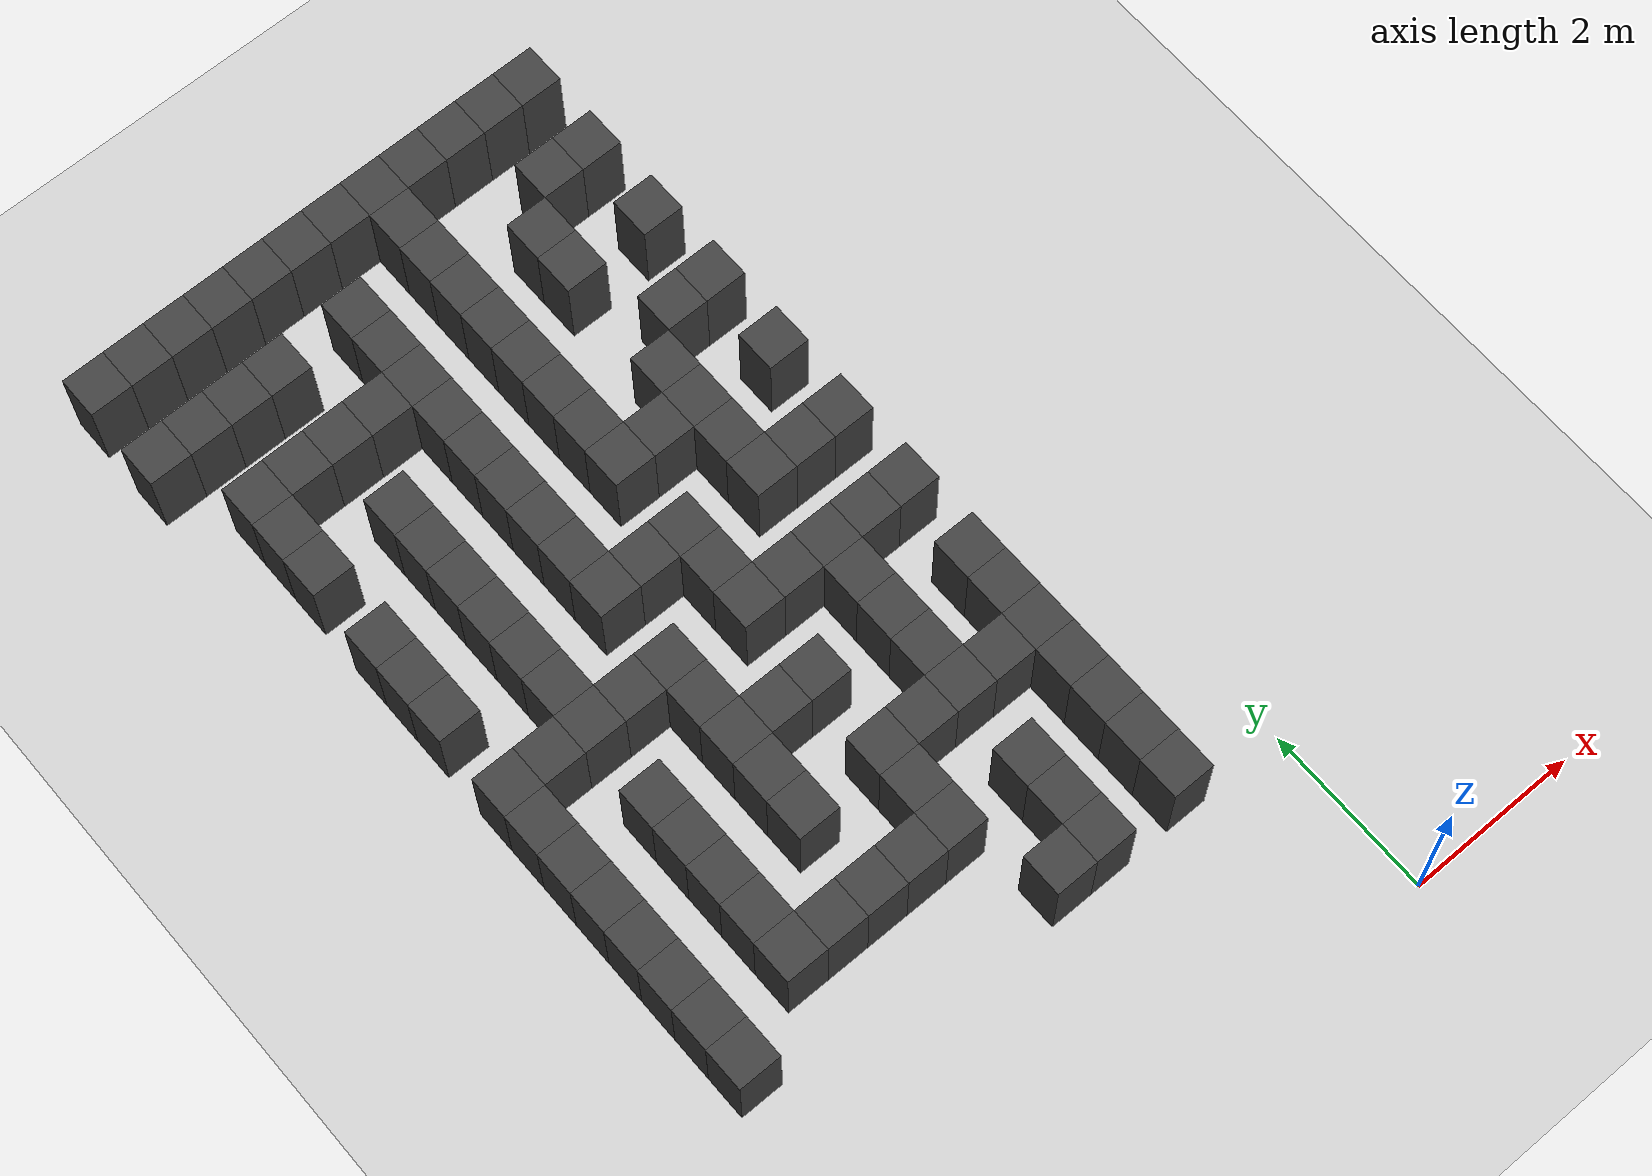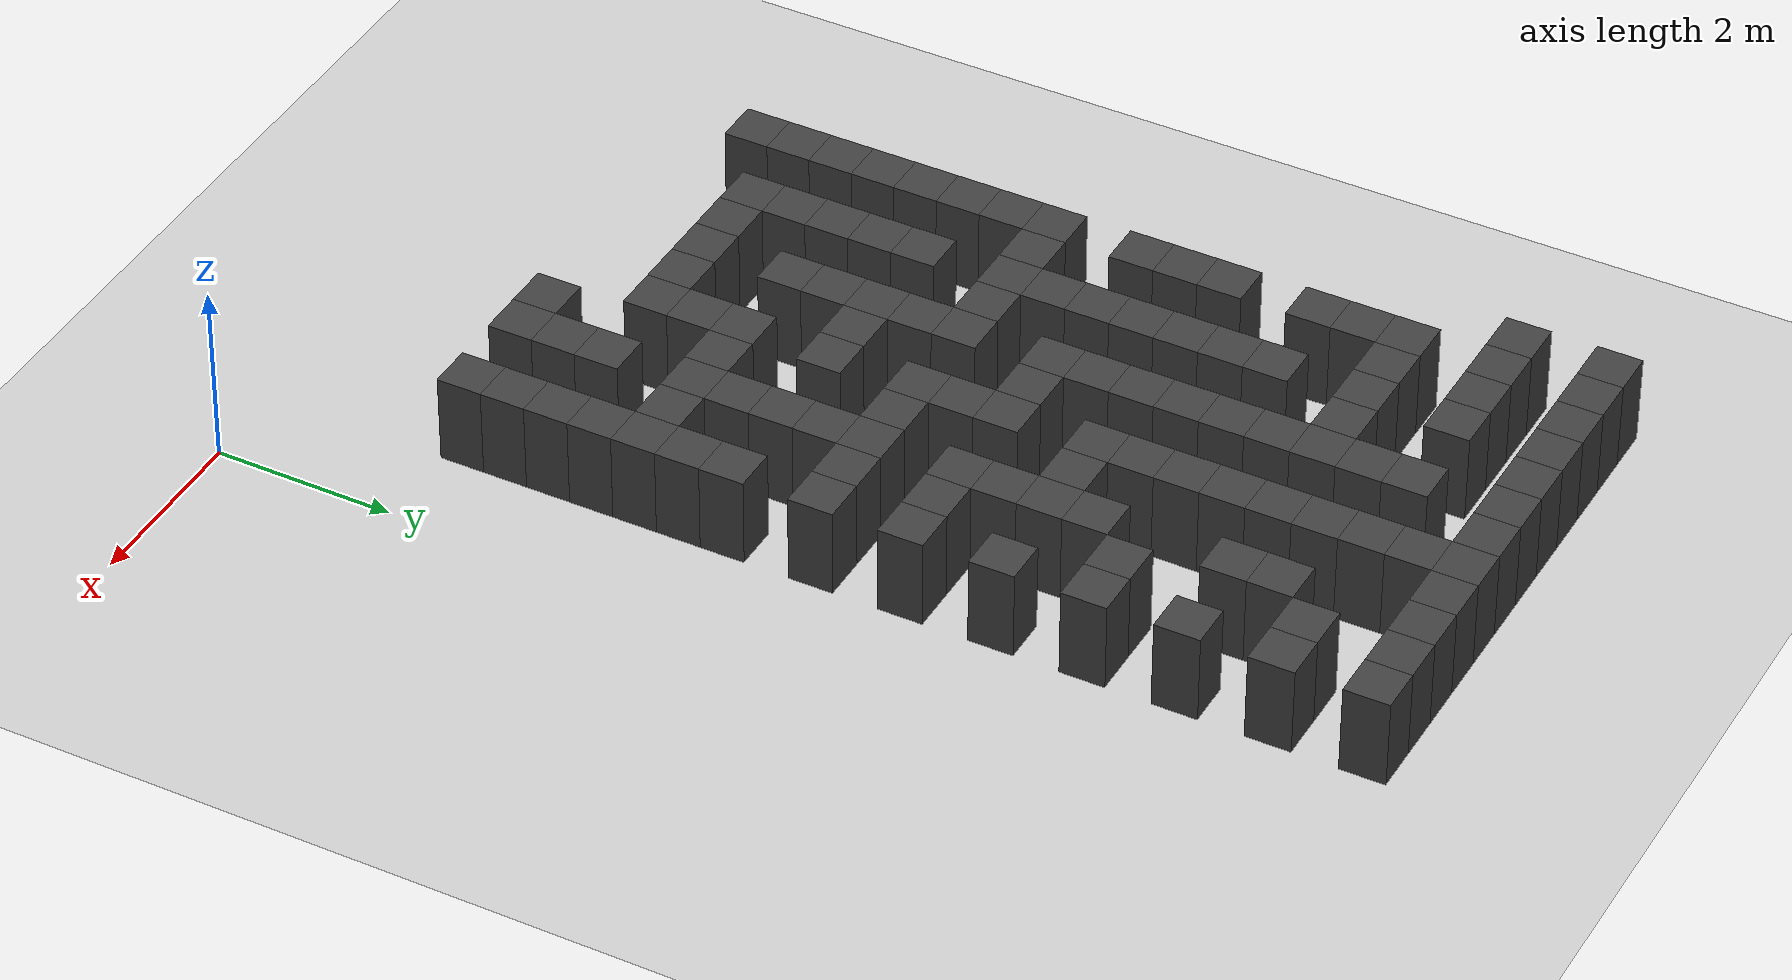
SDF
<sdf version="1.7">
 <world name="map_18332">
  <model name="ground_plane">
   <static>true</static>
   <link name="link">
    <collision name="collision">
     <geometry><plane><normal>0 0 1</normal><size>200 200</size></plane></geometry>
    </collision>
    <visual name="visual">
     <geometry><plane><normal>0 0 1</normal><size>200 200</size></plane></geometry>
     <material><ambient>0.8 0.8 0.8 1</ambient><diffuse>0.8 0.8 0.8 1</diffuse></material>
    </visual>
   </link>
  </model>
  <model name="maze_environment">
   <static>true</static>
   <link name="wall_11">
    <pose>-6.750 12.250 0.500 0 0 0</pose>
    <collision name="col"><geometry><box><size>0.5 0.5 1.0</size></box></geometry></collision>
    <visual name="vis">
     <geometry><box><size>0.5 0.5 1.0</size></box></geometry>
     <material><ambient>0.15 0.15 0.15 1</ambient><diffuse>0.25 0.25 0.25 1</diffuse></material>
    </visual>
   </link>
   <link name="wall_12">
    <pose>-6.250 12.250 0.500 0 0 0</pose>
    <collision name="col"><geometry><box><size>0.5 0.5 1.0</size></box></geometry></collision>
    <visual name="vis">
     <geometry><box><size>0.5 0.5 1.0</size></box></geometry>
     <material><ambient>0.15 0.15 0.15 1</ambient><diffuse>0.25 0.25 0.25 1</diffuse></material>
    </visual>
   </link>
   <link name="wall_13">
    <pose>-5.750 12.250 0.500 0 0 0</pose>
    <collision name="col"><geometry><box><size>0.5 0.5 1.0</size></box></geometry></collision>
    <visual name="vis">
     <geometry><box><size>0.5 0.5 1.0</size></box></geometry>
     <material><ambient>0.15 0.15 0.15 1</ambient><diffuse>0.25 0.25 0.25 1</diffuse></material>
    </visual>
   </link>
   <link name="wall_14">
    <pose>-5.250 12.250 0.500 0 0 0</pose>
    <collision name="col"><geometry><box><size>0.5 0.5 1.0</size></box></geometry></collision>
    <visual name="vis">
     <geometry><box><size>0.5 0.5 1.0</size></box></geometry>
     <material><ambient>0.15 0.15 0.15 1</ambient><diffuse>0.25 0.25 0.25 1</diffuse></material>
    </visual>
   </link>
   <link name="wall_15">
    <pose>-4.750 12.250 0.500 0 0 0</pose>
    <collision name="col"><geometry><box><size>0.5 0.5 1.0</size></box></geometry></collision>
    <visual name="vis">
     <geometry><box><size>0.5 0.5 1.0</size></box></geometry>
     <material><ambient>0.15 0.15 0.15 1</ambient><diffuse>0.25 0.25 0.25 1</diffuse></material>
    </visual>
   </link>
   <link name="wall_16">
    <pose>-4.250 12.250 0.500 0 0 0</pose>
    <collision name="col"><geometry><box><size>0.5 0.5 1.0</size></box></geometry></collision>
    <visual name="vis">
     <geometry><box><size>0.5 0.5 1.0</size></box></geometry>
     <material><ambient>0.15 0.15 0.15 1</ambient><diffuse>0.25 0.25 0.25 1</diffuse></material>
    </visual>
   </link>
   <link name="wall_17">
    <pose>-3.750 12.250 0.500 0 0 0</pose>
    <collision name="col"><geometry><box><size>0.5 0.5 1.0</size></box></geometry></collision>
    <visual name="vis">
     <geometry><box><size>0.5 0.5 1.0</size></box></geometry>
     <material><ambient>0.15 0.15 0.15 1</ambient><diffuse>0.25 0.25 0.25 1</diffuse></material>
    </visual>
   </link>
   <link name="wall_18">
    <pose>-3.250 12.250 0.500 0 0 0</pose>
    <collision name="col"><geometry><box><size>0.5 0.5 1.0</size></box></geometry></collision>
    <visual name="vis">
     <geometry><box><size>0.5 0.5 1.0</size></box></geometry>
     <material><ambient>0.15 0.15 0.15 1</ambient><diffuse>0.25 0.25 0.25 1</diffuse></material>
    </visual>
   </link>
   <link name="wall_19">
    <pose>-2.750 12.250 0.500 0 0 0</pose>
    <collision name="col"><geometry><box><size>0.5 0.5 1.0</size></box></geometry></collision>
    <visual name="vis">
     <geometry><box><size>0.5 0.5 1.0</size></box></geometry>
     <material><ambient>0.15 0.15 0.15 1</ambient><diffuse>0.25 0.25 0.25 1</diffuse></material>
    </visual>
   </link>
   <link name="wall_20">
    <pose>-2.250 12.250 0.500 0 0 0</pose>
    <collision name="col"><geometry><box><size>0.5 0.5 1.0</size></box></geometry></collision>
    <visual name="vis">
     <geometry><box><size>0.5 0.5 1.0</size></box></geometry>
     <material><ambient>0.15 0.15 0.15 1</ambient><diffuse>0.25 0.25 0.25 1</diffuse></material>
    </visual>
   </link>
   <link name="wall_21">
    <pose>-1.750 12.250 0.500 0 0 0</pose>
    <collision name="col"><geometry><box><size>0.5 0.5 1.0</size></box></geometry></collision>
    <visual name="vis">
     <geometry><box><size>0.5 0.5 1.0</size></box></geometry>
     <material><ambient>0.15 0.15 0.15 1</ambient><diffuse>0.25 0.25 0.25 1</diffuse></material>
    </visual>
   </link>
   <link name="wall_22">
    <pose>-1.250 12.250 0.500 0 0 0</pose>
    <collision name="col"><geometry><box><size>0.5 0.5 1.0</size></box></geometry></collision>
    <visual name="vis">
     <geometry><box><size>0.5 0.5 1.0</size></box></geometry>
     <material><ambient>0.15 0.15 0.15 1</ambient><diffuse>0.25 0.25 0.25 1</diffuse></material>
    </visual>
   </link>
   <link name="wall_53">
    <pose>-3.250 11.750 0.500 0 0 0</pose>
    <collision name="col"><geometry><box><size>0.5 0.5 1.0</size></box></geometry></collision>
    <visual name="vis">
     <geometry><box><size>0.5 0.5 1.0</size></box></geometry>
     <material><ambient>0.15 0.15 0.15 1</ambient><diffuse>0.25 0.25 0.25 1</diffuse></material>
    </visual>
   </link>
   <link name="wall_65">
    <pose>-6.750 11.250 0.500 0 0 0</pose>
    <collision name="col"><geometry><box><size>0.5 0.5 1.0</size></box></geometry></collision>
    <visual name="vis">
     <geometry><box><size>0.5 0.5 1.0</size></box></geometry>
     <material><ambient>0.15 0.15 0.15 1</ambient><diffuse>0.25 0.25 0.25 1</diffuse></material>
    </visual>
   </link>
   <link name="wall_66">
    <pose>-6.250 11.250 0.500 0 0 0</pose>
    <collision name="col"><geometry><box><size>0.5 0.5 1.0</size></box></geometry></collision>
    <visual name="vis">
     <geometry><box><size>0.5 0.5 1.0</size></box></geometry>
     <material><ambient>0.15 0.15 0.15 1</ambient><diffuse>0.25 0.25 0.25 1</diffuse></material>
    </visual>
   </link>
   <link name="wall_67">
    <pose>-5.750 11.250 0.500 0 0 0</pose>
    <collision name="col"><geometry><box><size>0.5 0.5 1.0</size></box></geometry></collision>
    <visual name="vis">
     <geometry><box><size>0.5 0.5 1.0</size></box></geometry>
     <material><ambient>0.15 0.15 0.15 1</ambient><diffuse>0.25 0.25 0.25 1</diffuse></material>
    </visual>
   </link>
   <link name="wall_68">
    <pose>-5.250 11.250 0.500 0 0 0</pose>
    <collision name="col"><geometry><box><size>0.5 0.5 1.0</size></box></geometry></collision>
    <visual name="vis">
     <geometry><box><size>0.5 0.5 1.0</size></box></geometry>
     <material><ambient>0.15 0.15 0.15 1</ambient><diffuse>0.25 0.25 0.25 1</diffuse></material>
    </visual>
   </link>
   <link name="wall_69">
    <pose>-4.250 11.250 0.500 0 0 0</pose>
    <collision name="col"><geometry><box><size>0.5 0.5 1.0</size></box></geometry></collision>
    <visual name="vis">
     <geometry><box><size>0.5 0.5 1.0</size></box></geometry>
     <material><ambient>0.15 0.15 0.15 1</ambient><diffuse>0.25 0.25 0.25 1</diffuse></material>
    </visual>
   </link>
   <link name="wall_70">
    <pose>-3.250 11.250 0.500 0 0 0</pose>
    <collision name="col"><geometry><box><size>0.5 0.5 1.0</size></box></geometry></collision>
    <visual name="vis">
     <geometry><box><size>0.5 0.5 1.0</size></box></geometry>
     <material><ambient>0.15 0.15 0.15 1</ambient><diffuse>0.25 0.25 0.25 1</diffuse></material>
    </visual>
   </link>
   <link name="wall_71">
    <pose>-1.750 11.250 0.500 0 0 0</pose>
    <collision name="col"><geometry><box><size>0.5 0.5 1.0</size></box></geometry></collision>
    <visual name="vis">
     <geometry><box><size>0.5 0.5 1.0</size></box></geometry>
     <material><ambient>0.15 0.15 0.15 1</ambient><diffuse>0.25 0.25 0.25 1</diffuse></material>
    </visual>
   </link>
   <link name="wall_72">
    <pose>-1.250 11.250 0.500 0 0 0</pose>
    <collision name="col"><geometry><box><size>0.5 0.5 1.0</size></box></geometry></collision>
    <visual name="vis">
     <geometry><box><size>0.5 0.5 1.0</size></box></geometry>
     <material><ambient>0.15 0.15 0.15 1</ambient><diffuse>0.25 0.25 0.25 1</diffuse></material>
    </visual>
   </link>
   <link name="wall_96">
    <pose>-4.250 10.750 0.500 0 0 0</pose>
    <collision name="col"><geometry><box><size>0.5 0.5 1.0</size></box></geometry></collision>
    <visual name="vis">
     <geometry><box><size>0.5 0.5 1.0</size></box></geometry>
     <material><ambient>0.15 0.15 0.15 1</ambient><diffuse>0.25 0.25 0.25 1</diffuse></material>
    </visual>
   </link>
   <link name="wall_97">
    <pose>-3.250 10.750 0.500 0 0 0</pose>
    <collision name="col"><geometry><box><size>0.5 0.5 1.0</size></box></geometry></collision>
    <visual name="vis">
     <geometry><box><size>0.5 0.5 1.0</size></box></geometry>
     <material><ambient>0.15 0.15 0.15 1</ambient><diffuse>0.25 0.25 0.25 1</diffuse></material>
    </visual>
   </link>
   <link name="wall_98">
    <pose>-2.250 10.750 0.500 0 0 0</pose>
    <collision name="col"><geometry><box><size>0.5 0.5 1.0</size></box></geometry></collision>
    <visual name="vis">
     <geometry><box><size>0.5 0.5 1.0</size></box></geometry>
     <material><ambient>0.15 0.15 0.15 1</ambient><diffuse>0.25 0.25 0.25 1</diffuse></material>
    </visual>
   </link>
   <link name="wall_116">
    <pose>-6.250 10.250 0.500 0 0 0</pose>
    <collision name="col"><geometry><box><size>0.5 0.5 1.0</size></box></geometry></collision>
    <visual name="vis">
     <geometry><box><size>0.5 0.5 1.0</size></box></geometry>
     <material><ambient>0.15 0.15 0.15 1</ambient><diffuse>0.25 0.25 0.25 1</diffuse></material>
    </visual>
   </link>
   <link name="wall_117">
    <pose>-5.750 10.250 0.500 0 0 0</pose>
    <collision name="col"><geometry><box><size>0.5 0.5 1.0</size></box></geometry></collision>
    <visual name="vis">
     <geometry><box><size>0.5 0.5 1.0</size></box></geometry>
     <material><ambient>0.15 0.15 0.15 1</ambient><diffuse>0.25 0.25 0.25 1</diffuse></material>
    </visual>
   </link>
   <link name="wall_118">
    <pose>-5.250 10.250 0.500 0 0 0</pose>
    <collision name="col"><geometry><box><size>0.5 0.5 1.0</size></box></geometry></collision>
    <visual name="vis">
     <geometry><box><size>0.5 0.5 1.0</size></box></geometry>
     <material><ambient>0.15 0.15 0.15 1</ambient><diffuse>0.25 0.25 0.25 1</diffuse></material>
    </visual>
   </link>
   <link name="wall_119">
    <pose>-4.750 10.250 0.500 0 0 0</pose>
    <collision name="col"><geometry><box><size>0.5 0.5 1.0</size></box></geometry></collision>
    <visual name="vis">
     <geometry><box><size>0.5 0.5 1.0</size></box></geometry>
     <material><ambient>0.15 0.15 0.15 1</ambient><diffuse>0.25 0.25 0.25 1</diffuse></material>
    </visual>
   </link>
   <link name="wall_120">
    <pose>-4.250 10.250 0.500 0 0 0</pose>
    <collision name="col"><geometry><box><size>0.5 0.5 1.0</size></box></geometry></collision>
    <visual name="vis">
     <geometry><box><size>0.5 0.5 1.0</size></box></geometry>
     <material><ambient>0.15 0.15 0.15 1</ambient><diffuse>0.25 0.25 0.25 1</diffuse></material>
    </visual>
   </link>
   <link name="wall_121">
    <pose>-3.250 10.250 0.500 0 0 0</pose>
    <collision name="col"><geometry><box><size>0.5 0.5 1.0</size></box></geometry></collision>
    <visual name="vis">
     <geometry><box><size>0.5 0.5 1.0</size></box></geometry>
     <material><ambient>0.15 0.15 0.15 1</ambient><diffuse>0.25 0.25 0.25 1</diffuse></material>
    </visual>
   </link>
   <link name="wall_122">
    <pose>-2.250 10.250 0.500 0 0 0</pose>
    <collision name="col"><geometry><box><size>0.5 0.5 1.0</size></box></geometry></collision>
    <visual name="vis">
     <geometry><box><size>0.5 0.5 1.0</size></box></geometry>
     <material><ambient>0.15 0.15 0.15 1</ambient><diffuse>0.25 0.25 0.25 1</diffuse></material>
    </visual>
   </link>
   <link name="wall_123">
    <pose>-1.250 10.250 0.500 0 0 0</pose>
    <collision name="col"><geometry><box><size>0.5 0.5 1.0</size></box></geometry></collision>
    <visual name="vis">
     <geometry><box><size>0.5 0.5 1.0</size></box></geometry>
     <material><ambient>0.15 0.15 0.15 1</ambient><diffuse>0.25 0.25 0.25 1</diffuse></material>
    </visual>
   </link>
   <link name="wall_148">
    <pose>-6.250 9.750 0.500 0 0 0</pose>
    <collision name="col"><geometry><box><size>0.5 0.5 1.0</size></box></geometry></collision>
    <visual name="vis">
     <geometry><box><size>0.5 0.5 1.0</size></box></geometry>
     <material><ambient>0.15 0.15 0.15 1</ambient><diffuse>0.25 0.25 0.25 1</diffuse></material>
    </visual>
   </link>
   <link name="wall_149">
    <pose>-4.250 9.750 0.500 0 0 0</pose>
    <collision name="col"><geometry><box><size>0.5 0.5 1.0</size></box></geometry></collision>
    <visual name="vis">
     <geometry><box><size>0.5 0.5 1.0</size></box></geometry>
     <material><ambient>0.15 0.15 0.15 1</ambient><diffuse>0.25 0.25 0.25 1</diffuse></material>
    </visual>
   </link>
   <link name="wall_150">
    <pose>-3.250 9.750 0.500 0 0 0</pose>
    <collision name="col"><geometry><box><size>0.5 0.5 1.0</size></box></geometry></collision>
    <visual name="vis">
     <geometry><box><size>0.5 0.5 1.0</size></box></geometry>
     <material><ambient>0.15 0.15 0.15 1</ambient><diffuse>0.25 0.25 0.25 1</diffuse></material>
    </visual>
   </link>
   <link name="wall_166">
    <pose>-6.250 9.250 0.500 0 0 0</pose>
    <collision name="col"><geometry><box><size>0.5 0.5 1.0</size></box></geometry></collision>
    <visual name="vis">
     <geometry><box><size>0.5 0.5 1.0</size></box></geometry>
     <material><ambient>0.15 0.15 0.15 1</ambient><diffuse>0.25 0.25 0.25 1</diffuse></material>
    </visual>
   </link>
   <link name="wall_167">
    <pose>-5.250 9.250 0.500 0 0 0</pose>
    <collision name="col"><geometry><box><size>0.5 0.5 1.0</size></box></geometry></collision>
    <visual name="vis">
     <geometry><box><size>0.5 0.5 1.0</size></box></geometry>
     <material><ambient>0.15 0.15 0.15 1</ambient><diffuse>0.25 0.25 0.25 1</diffuse></material>
    </visual>
   </link>
   <link name="wall_168">
    <pose>-4.250 9.250 0.500 0 0 0</pose>
    <collision name="col"><geometry><box><size>0.5 0.5 1.0</size></box></geometry></collision>
    <visual name="vis">
     <geometry><box><size>0.5 0.5 1.0</size></box></geometry>
     <material><ambient>0.15 0.15 0.15 1</ambient><diffuse>0.25 0.25 0.25 1</diffuse></material>
    </visual>
   </link>
   <link name="wall_169">
    <pose>-3.250 9.250 0.500 0 0 0</pose>
    <collision name="col"><geometry><box><size>0.5 0.5 1.0</size></box></geometry></collision>
    <visual name="vis">
     <geometry><box><size>0.5 0.5 1.0</size></box></geometry>
     <material><ambient>0.15 0.15 0.15 1</ambient><diffuse>0.25 0.25 0.25 1</diffuse></material>
    </visual>
   </link>
   <link name="wall_170">
    <pose>-1.750 9.250 0.500 0 0 0</pose>
    <collision name="col"><geometry><box><size>0.5 0.5 1.0</size></box></geometry></collision>
    <visual name="vis">
     <geometry><box><size>0.5 0.5 1.0</size></box></geometry>
     <material><ambient>0.15 0.15 0.15 1</ambient><diffuse>0.25 0.25 0.25 1</diffuse></material>
    </visual>
   </link>
   <link name="wall_171">
    <pose>-1.250 9.250 0.500 0 0 0</pose>
    <collision name="col"><geometry><box><size>0.5 0.5 1.0</size></box></geometry></collision>
    <visual name="vis">
     <geometry><box><size>0.5 0.5 1.0</size></box></geometry>
     <material><ambient>0.15 0.15 0.15 1</ambient><diffuse>0.25 0.25 0.25 1</diffuse></material>
    </visual>
   </link>
   <link name="wall_198">
    <pose>-5.250 8.750 0.500 0 0 0</pose>
    <collision name="col"><geometry><box><size>0.5 0.5 1.0</size></box></geometry></collision>
    <visual name="vis">
     <geometry><box><size>0.5 0.5 1.0</size></box></geometry>
     <material><ambient>0.15 0.15 0.15 1</ambient><diffuse>0.25 0.25 0.25 1</diffuse></material>
    </visual>
   </link>
   <link name="wall_199">
    <pose>-4.250 8.750 0.500 0 0 0</pose>
    <collision name="col"><geometry><box><size>0.5 0.5 1.0</size></box></geometry></collision>
    <visual name="vis">
     <geometry><box><size>0.5 0.5 1.0</size></box></geometry>
     <material><ambient>0.15 0.15 0.15 1</ambient><diffuse>0.25 0.25 0.25 1</diffuse></material>
    </visual>
   </link>
   <link name="wall_200">
    <pose>-3.250 8.750 0.500 0 0 0</pose>
    <collision name="col"><geometry><box><size>0.5 0.5 1.0</size></box></geometry></collision>
    <visual name="vis">
     <geometry><box><size>0.5 0.5 1.0</size></box></geometry>
     <material><ambient>0.15 0.15 0.15 1</ambient><diffuse>0.25 0.25 0.25 1</diffuse></material>
    </visual>
   </link>
   <link name="wall_201">
    <pose>-2.250 8.750 0.500 0 0 0</pose>
    <collision name="col"><geometry><box><size>0.5 0.5 1.0</size></box></geometry></collision>
    <visual name="vis">
     <geometry><box><size>0.5 0.5 1.0</size></box></geometry>
     <material><ambient>0.15 0.15 0.15 1</ambient><diffuse>0.25 0.25 0.25 1</diffuse></material>
    </visual>
   </link>
   <link name="wall_217">
    <pose>-6.250 8.250 0.500 0 0 0</pose>
    <collision name="col"><geometry><box><size>0.5 0.5 1.0</size></box></geometry></collision>
    <visual name="vis">
     <geometry><box><size>0.5 0.5 1.0</size></box></geometry>
     <material><ambient>0.15 0.15 0.15 1</ambient><diffuse>0.25 0.25 0.25 1</diffuse></material>
    </visual>
   </link>
   <link name="wall_218">
    <pose>-5.250 8.250 0.500 0 0 0</pose>
    <collision name="col"><geometry><box><size>0.5 0.5 1.0</size></box></geometry></collision>
    <visual name="vis">
     <geometry><box><size>0.5 0.5 1.0</size></box></geometry>
     <material><ambient>0.15 0.15 0.15 1</ambient><diffuse>0.25 0.25 0.25 1</diffuse></material>
    </visual>
   </link>
   <link name="wall_219">
    <pose>-4.250 8.250 0.500 0 0 0</pose>
    <collision name="col"><geometry><box><size>0.5 0.5 1.0</size></box></geometry></collision>
    <visual name="vis">
     <geometry><box><size>0.5 0.5 1.0</size></box></geometry>
     <material><ambient>0.15 0.15 0.15 1</ambient><diffuse>0.25 0.25 0.25 1</diffuse></material>
    </visual>
   </link>
   <link name="wall_220">
    <pose>-3.250 8.250 0.500 0 0 0</pose>
    <collision name="col"><geometry><box><size>0.5 0.5 1.0</size></box></geometry></collision>
    <visual name="vis">
     <geometry><box><size>0.5 0.5 1.0</size></box></geometry>
     <material><ambient>0.15 0.15 0.15 1</ambient><diffuse>0.25 0.25 0.25 1</diffuse></material>
    </visual>
   </link>
   <link name="wall_221">
    <pose>-2.750 8.250 0.500 0 0 0</pose>
    <collision name="col"><geometry><box><size>0.5 0.5 1.0</size></box></geometry></collision>
    <visual name="vis">
     <geometry><box><size>0.5 0.5 1.0</size></box></geometry>
     <material><ambient>0.15 0.15 0.15 1</ambient><diffuse>0.25 0.25 0.25 1</diffuse></material>
    </visual>
   </link>
   <link name="wall_222">
    <pose>-2.250 8.250 0.500 0 0 0</pose>
    <collision name="col"><geometry><box><size>0.5 0.5 1.0</size></box></geometry></collision>
    <visual name="vis">
     <geometry><box><size>0.5 0.5 1.0</size></box></geometry>
     <material><ambient>0.15 0.15 0.15 1</ambient><diffuse>0.25 0.25 0.25 1</diffuse></material>
    </visual>
   </link>
   <link name="wall_223">
    <pose>-1.250 8.250 0.500 0 0 0</pose>
    <collision name="col"><geometry><box><size>0.5 0.5 1.0</size></box></geometry></collision>
    <visual name="vis">
     <geometry><box><size>0.5 0.5 1.0</size></box></geometry>
     <material><ambient>0.15 0.15 0.15 1</ambient><diffuse>0.25 0.25 0.25 1</diffuse></material>
    </visual>
   </link>
   <link name="wall_248">
    <pose>-6.250 7.750 0.500 0 0 0</pose>
    <collision name="col"><geometry><box><size>0.5 0.5 1.0</size></box></geometry></collision>
    <visual name="vis">
     <geometry><box><size>0.5 0.5 1.0</size></box></geometry>
     <material><ambient>0.15 0.15 0.15 1</ambient><diffuse>0.25 0.25 0.25 1</diffuse></material>
    </visual>
   </link>
   <link name="wall_249">
    <pose>-5.250 7.750 0.500 0 0 0</pose>
    <collision name="col"><geometry><box><size>0.5 0.5 1.0</size></box></geometry></collision>
    <visual name="vis">
     <geometry><box><size>0.5 0.5 1.0</size></box></geometry>
     <material><ambient>0.15 0.15 0.15 1</ambient><diffuse>0.25 0.25 0.25 1</diffuse></material>
    </visual>
   </link>
   <link name="wall_250">
    <pose>-4.250 7.750 0.500 0 0 0</pose>
    <collision name="col"><geometry><box><size>0.5 0.5 1.0</size></box></geometry></collision>
    <visual name="vis">
     <geometry><box><size>0.5 0.5 1.0</size></box></geometry>
     <material><ambient>0.15 0.15 0.15 1</ambient><diffuse>0.25 0.25 0.25 1</diffuse></material>
    </visual>
   </link>
   <link name="wall_251">
    <pose>-2.250 7.750 0.500 0 0 0</pose>
    <collision name="col"><geometry><box><size>0.5 0.5 1.0</size></box></geometry></collision>
    <visual name="vis">
     <geometry><box><size>0.5 0.5 1.0</size></box></geometry>
     <material><ambient>0.15 0.15 0.15 1</ambient><diffuse>0.25 0.25 0.25 1</diffuse></material>
    </visual>
   </link>
   <link name="wall_265">
    <pose>-6.250 7.250 0.500 0 0 0</pose>
    <collision name="col"><geometry><box><size>0.5 0.5 1.0</size></box></geometry></collision>
    <visual name="vis">
     <geometry><box><size>0.5 0.5 1.0</size></box></geometry>
     <material><ambient>0.15 0.15 0.15 1</ambient><diffuse>0.25 0.25 0.25 1</diffuse></material>
    </visual>
   </link>
   <link name="wall_266">
    <pose>-5.250 7.250 0.500 0 0 0</pose>
    <collision name="col"><geometry><box><size>0.5 0.5 1.0</size></box></geometry></collision>
    <visual name="vis">
     <geometry><box><size>0.5 0.5 1.0</size></box></geometry>
     <material><ambient>0.15 0.15 0.15 1</ambient><diffuse>0.25 0.25 0.25 1</diffuse></material>
    </visual>
   </link>
   <link name="wall_267">
    <pose>-4.250 7.250 0.500 0 0 0</pose>
    <collision name="col"><geometry><box><size>0.5 0.5 1.0</size></box></geometry></collision>
    <visual name="vis">
     <geometry><box><size>0.5 0.5 1.0</size></box></geometry>
     <material><ambient>0.15 0.15 0.15 1</ambient><diffuse>0.25 0.25 0.25 1</diffuse></material>
    </visual>
   </link>
   <link name="wall_268">
    <pose>-3.750 7.250 0.500 0 0 0</pose>
    <collision name="col"><geometry><box><size>0.5 0.5 1.0</size></box></geometry></collision>
    <visual name="vis">
     <geometry><box><size>0.5 0.5 1.0</size></box></geometry>
     <material><ambient>0.15 0.15 0.15 1</ambient><diffuse>0.25 0.25 0.25 1</diffuse></material>
    </visual>
   </link>
   <link name="wall_269">
    <pose>-3.250 7.250 0.500 0 0 0</pose>
    <collision name="col"><geometry><box><size>0.5 0.5 1.0</size></box></geometry></collision>
    <visual name="vis">
     <geometry><box><size>0.5 0.5 1.0</size></box></geometry>
     <material><ambient>0.15 0.15 0.15 1</ambient><diffuse>0.25 0.25 0.25 1</diffuse></material>
    </visual>
   </link>
   <link name="wall_270">
    <pose>-2.250 7.250 0.500 0 0 0</pose>
    <collision name="col"><geometry><box><size>0.5 0.5 1.0</size></box></geometry></collision>
    <visual name="vis">
     <geometry><box><size>0.5 0.5 1.0</size></box></geometry>
     <material><ambient>0.15 0.15 0.15 1</ambient><diffuse>0.25 0.25 0.25 1</diffuse></material>
    </visual>
   </link>
   <link name="wall_271">
    <pose>-1.750 7.250 0.500 0 0 0</pose>
    <collision name="col"><geometry><box><size>0.5 0.5 1.0</size></box></geometry></collision>
    <visual name="vis">
     <geometry><box><size>0.5 0.5 1.0</size></box></geometry>
     <material><ambient>0.15 0.15 0.15 1</ambient><diffuse>0.25 0.25 0.25 1</diffuse></material>
    </visual>
   </link>
   <link name="wall_272">
    <pose>-1.250 7.250 0.500 0 0 0</pose>
    <collision name="col"><geometry><box><size>0.5 0.5 1.0</size></box></geometry></collision>
    <visual name="vis">
     <geometry><box><size>0.5 0.5 1.0</size></box></geometry>
     <material><ambient>0.15 0.15 0.15 1</ambient><diffuse>0.25 0.25 0.25 1</diffuse></material>
    </visual>
   </link>
   <link name="wall_297">
    <pose>-5.250 6.750 0.500 0 0 0</pose>
    <collision name="col"><geometry><box><size>0.5 0.5 1.0</size></box></geometry></collision>
    <visual name="vis">
     <geometry><box><size>0.5 0.5 1.0</size></box></geometry>
     <material><ambient>0.15 0.15 0.15 1</ambient><diffuse>0.25 0.25 0.25 1</diffuse></material>
    </visual>
   </link>
   <link name="wall_298">
    <pose>-3.250 6.750 0.500 0 0 0</pose>
    <collision name="col"><geometry><box><size>0.5 0.5 1.0</size></box></geometry></collision>
    <visual name="vis">
     <geometry><box><size>0.5 0.5 1.0</size></box></geometry>
     <material><ambient>0.15 0.15 0.15 1</ambient><diffuse>0.25 0.25 0.25 1</diffuse></material>
    </visual>
   </link>
   <link name="wall_316">
    <pose>-6.250 6.250 0.500 0 0 0</pose>
    <collision name="col"><geometry><box><size>0.5 0.5 1.0</size></box></geometry></collision>
    <visual name="vis">
     <geometry><box><size>0.5 0.5 1.0</size></box></geometry>
     <material><ambient>0.15 0.15 0.15 1</ambient><diffuse>0.25 0.25 0.25 1</diffuse></material>
    </visual>
   </link>
   <link name="wall_317">
    <pose>-5.750 6.250 0.500 0 0 0</pose>
    <collision name="col"><geometry><box><size>0.5 0.5 1.0</size></box></geometry></collision>
    <visual name="vis">
     <geometry><box><size>0.5 0.5 1.0</size></box></geometry>
     <material><ambient>0.15 0.15 0.15 1</ambient><diffuse>0.25 0.25 0.25 1</diffuse></material>
    </visual>
   </link>
   <link name="wall_318">
    <pose>-5.250 6.250 0.500 0 0 0</pose>
    <collision name="col"><geometry><box><size>0.5 0.5 1.0</size></box></geometry></collision>
    <visual name="vis">
     <geometry><box><size>0.5 0.5 1.0</size></box></geometry>
     <material><ambient>0.15 0.15 0.15 1</ambient><diffuse>0.25 0.25 0.25 1</diffuse></material>
    </visual>
   </link>
   <link name="wall_319">
    <pose>-4.750 6.250 0.500 0 0 0</pose>
    <collision name="col"><geometry><box><size>0.5 0.5 1.0</size></box></geometry></collision>
    <visual name="vis">
     <geometry><box><size>0.5 0.5 1.0</size></box></geometry>
     <material><ambient>0.15 0.15 0.15 1</ambient><diffuse>0.25 0.25 0.25 1</diffuse></material>
    </visual>
   </link>
   <link name="wall_320">
    <pose>-4.250 6.250 0.500 0 0 0</pose>
    <collision name="col"><geometry><box><size>0.5 0.5 1.0</size></box></geometry></collision>
    <visual name="vis">
     <geometry><box><size>0.5 0.5 1.0</size></box></geometry>
     <material><ambient>0.15 0.15 0.15 1</ambient><diffuse>0.25 0.25 0.25 1</diffuse></material>
    </visual>
   </link>
   <link name="wall_321">
    <pose>-3.250 6.250 0.500 0 0 0</pose>
    <collision name="col"><geometry><box><size>0.5 0.5 1.0</size></box></geometry></collision>
    <visual name="vis">
     <geometry><box><size>0.5 0.5 1.0</size></box></geometry>
     <material><ambient>0.15 0.15 0.15 1</ambient><diffuse>0.25 0.25 0.25 1</diffuse></material>
    </visual>
   </link>
   <link name="wall_322">
    <pose>-2.750 6.250 0.500 0 0 0</pose>
    <collision name="col"><geometry><box><size>0.5 0.5 1.0</size></box></geometry></collision>
    <visual name="vis">
     <geometry><box><size>0.5 0.5 1.0</size></box></geometry>
     <material><ambient>0.15 0.15 0.15 1</ambient><diffuse>0.25 0.25 0.25 1</diffuse></material>
    </visual>
   </link>
   <link name="wall_323">
    <pose>-2.250 6.250 0.500 0 0 0</pose>
    <collision name="col"><geometry><box><size>0.5 0.5 1.0</size></box></geometry></collision>
    <visual name="vis">
     <geometry><box><size>0.5 0.5 1.0</size></box></geometry>
     <material><ambient>0.15 0.15 0.15 1</ambient><diffuse>0.25 0.25 0.25 1</diffuse></material>
    </visual>
   </link>
   <link name="wall_324">
    <pose>-1.750 6.250 0.500 0 0 0</pose>
    <collision name="col"><geometry><box><size>0.5 0.5 1.0</size></box></geometry></collision>
    <visual name="vis">
     <geometry><box><size>0.5 0.5 1.0</size></box></geometry>
     <material><ambient>0.15 0.15 0.15 1</ambient><diffuse>0.25 0.25 0.25 1</diffuse></material>
    </visual>
   </link>
   <link name="wall_325">
    <pose>-1.250 6.250 0.500 0 0 0</pose>
    <collision name="col"><geometry><box><size>0.5 0.5 1.0</size></box></geometry></collision>
    <visual name="vis">
     <geometry><box><size>0.5 0.5 1.0</size></box></geometry>
     <material><ambient>0.15 0.15 0.15 1</ambient><diffuse>0.25 0.25 0.25 1</diffuse></material>
    </visual>
   </link>
   <link name="wall_351">
    <pose>-6.250 5.750 0.500 0 0 0</pose>
    <collision name="col"><geometry><box><size>0.5 0.5 1.0</size></box></geometry></collision>
    <visual name="vis">
     <geometry><box><size>0.5 0.5 1.0</size></box></geometry>
     <material><ambient>0.15 0.15 0.15 1</ambient><diffuse>0.25 0.25 0.25 1</diffuse></material>
    </visual>
   </link>
   <link name="wall_352">
    <pose>-4.250 5.750 0.500 0 0 0</pose>
    <collision name="col"><geometry><box><size>0.5 0.5 1.0</size></box></geometry></collision>
    <visual name="vis">
     <geometry><box><size>0.5 0.5 1.0</size></box></geometry>
     <material><ambient>0.15 0.15 0.15 1</ambient><diffuse>0.25 0.25 0.25 1</diffuse></material>
    </visual>
   </link>
   <link name="wall_353">
    <pose>-2.250 5.750 0.500 0 0 0</pose>
    <collision name="col"><geometry><box><size>0.5 0.5 1.0</size></box></geometry></collision>
    <visual name="vis">
     <geometry><box><size>0.5 0.5 1.0</size></box></geometry>
     <material><ambient>0.15 0.15 0.15 1</ambient><diffuse>0.25 0.25 0.25 1</diffuse></material>
    </visual>
   </link>
   <link name="wall_367">
    <pose>-6.250 5.250 0.500 0 0 0</pose>
    <collision name="col"><geometry><box><size>0.5 0.5 1.0</size></box></geometry></collision>
    <visual name="vis">
     <geometry><box><size>0.5 0.5 1.0</size></box></geometry>
     <material><ambient>0.15 0.15 0.15 1</ambient><diffuse>0.25 0.25 0.25 1</diffuse></material>
    </visual>
   </link>
   <link name="wall_368">
    <pose>-5.250 5.250 0.500 0 0 0</pose>
    <collision name="col"><geometry><box><size>0.5 0.5 1.0</size></box></geometry></collision>
    <visual name="vis">
     <geometry><box><size>0.5 0.5 1.0</size></box></geometry>
     <material><ambient>0.15 0.15 0.15 1</ambient><diffuse>0.25 0.25 0.25 1</diffuse></material>
    </visual>
   </link>
   <link name="wall_369">
    <pose>-4.250 5.250 0.500 0 0 0</pose>
    <collision name="col"><geometry><box><size>0.5 0.5 1.0</size></box></geometry></collision>
    <visual name="vis">
     <geometry><box><size>0.5 0.5 1.0</size></box></geometry>
     <material><ambient>0.15 0.15 0.15 1</ambient><diffuse>0.25 0.25 0.25 1</diffuse></material>
    </visual>
   </link>
   <link name="wall_370">
    <pose>-3.750 5.250 0.500 0 0 0</pose>
    <collision name="col"><geometry><box><size>0.5 0.5 1.0</size></box></geometry></collision>
    <visual name="vis">
     <geometry><box><size>0.5 0.5 1.0</size></box></geometry>
     <material><ambient>0.15 0.15 0.15 1</ambient><diffuse>0.25 0.25 0.25 1</diffuse></material>
    </visual>
   </link>
   <link name="wall_371">
    <pose>-3.250 5.250 0.500 0 0 0</pose>
    <collision name="col"><geometry><box><size>0.5 0.5 1.0</size></box></geometry></collision>
    <visual name="vis">
     <geometry><box><size>0.5 0.5 1.0</size></box></geometry>
     <material><ambient>0.15 0.15 0.15 1</ambient><diffuse>0.25 0.25 0.25 1</diffuse></material>
    </visual>
   </link>
   <link name="wall_372">
    <pose>-2.250 5.250 0.500 0 0 0</pose>
    <collision name="col"><geometry><box><size>0.5 0.5 1.0</size></box></geometry></collision>
    <visual name="vis">
     <geometry><box><size>0.5 0.5 1.0</size></box></geometry>
     <material><ambient>0.15 0.15 0.15 1</ambient><diffuse>0.25 0.25 0.25 1</diffuse></material>
    </visual>
   </link>
   <link name="wall_373">
    <pose>-1.250 5.250 0.500 0 0 0</pose>
    <collision name="col"><geometry><box><size>0.5 0.5 1.0</size></box></geometry></collision>
    <visual name="vis">
     <geometry><box><size>0.5 0.5 1.0</size></box></geometry>
     <material><ambient>0.15 0.15 0.15 1</ambient><diffuse>0.25 0.25 0.25 1</diffuse></material>
    </visual>
   </link>
   <link name="wall_396">
    <pose>-6.250 4.750 0.500 0 0 0</pose>
    <collision name="col"><geometry><box><size>0.5 0.5 1.0</size></box></geometry></collision>
    <visual name="vis">
     <geometry><box><size>0.5 0.5 1.0</size></box></geometry>
     <material><ambient>0.15 0.15 0.15 1</ambient><diffuse>0.25 0.25 0.25 1</diffuse></material>
    </visual>
   </link>
   <link name="wall_397">
    <pose>-5.250 4.750 0.500 0 0 0</pose>
    <collision name="col"><geometry><box><size>0.5 0.5 1.0</size></box></geometry></collision>
    <visual name="vis">
     <geometry><box><size>0.5 0.5 1.0</size></box></geometry>
     <material><ambient>0.15 0.15 0.15 1</ambient><diffuse>0.25 0.25 0.25 1</diffuse></material>
    </visual>
   </link>
   <link name="wall_398">
    <pose>-4.250 4.750 0.500 0 0 0</pose>
    <collision name="col"><geometry><box><size>0.5 0.5 1.0</size></box></geometry></collision>
    <visual name="vis">
     <geometry><box><size>0.5 0.5 1.0</size></box></geometry>
     <material><ambient>0.15 0.15 0.15 1</ambient><diffuse>0.25 0.25 0.25 1</diffuse></material>
    </visual>
   </link>
   <link name="wall_399">
    <pose>-2.250 4.750 0.500 0 0 0</pose>
    <collision name="col"><geometry><box><size>0.5 0.5 1.0</size></box></geometry></collision>
    <visual name="vis">
     <geometry><box><size>0.5 0.5 1.0</size></box></geometry>
     <material><ambient>0.15 0.15 0.15 1</ambient><diffuse>0.25 0.25 0.25 1</diffuse></material>
    </visual>
   </link>
   <link name="wall_400">
    <pose>-1.250 4.750 0.500 0 0 0</pose>
    <collision name="col"><geometry><box><size>0.5 0.5 1.0</size></box></geometry></collision>
    <visual name="vis">
     <geometry><box><size>0.5 0.5 1.0</size></box></geometry>
     <material><ambient>0.15 0.15 0.15 1</ambient><diffuse>0.25 0.25 0.25 1</diffuse></material>
    </visual>
   </link>
   <link name="wall_418">
    <pose>-6.250 4.250 0.500 0 0 0</pose>
    <collision name="col"><geometry><box><size>0.5 0.5 1.0</size></box></geometry></collision>
    <visual name="vis">
     <geometry><box><size>0.5 0.5 1.0</size></box></geometry>
     <material><ambient>0.15 0.15 0.15 1</ambient><diffuse>0.25 0.25 0.25 1</diffuse></material>
    </visual>
   </link>
   <link name="wall_419">
    <pose>-5.250 4.250 0.500 0 0 0</pose>
    <collision name="col"><geometry><box><size>0.5 0.5 1.0</size></box></geometry></collision>
    <visual name="vis">
     <geometry><box><size>0.5 0.5 1.0</size></box></geometry>
     <material><ambient>0.15 0.15 0.15 1</ambient><diffuse>0.25 0.25 0.25 1</diffuse></material>
    </visual>
   </link>
   <link name="wall_420">
    <pose>-4.250 4.250 0.500 0 0 0</pose>
    <collision name="col"><geometry><box><size>0.5 0.5 1.0</size></box></geometry></collision>
    <visual name="vis">
     <geometry><box><size>0.5 0.5 1.0</size></box></geometry>
     <material><ambient>0.15 0.15 0.15 1</ambient><diffuse>0.25 0.25 0.25 1</diffuse></material>
    </visual>
   </link>
   <link name="wall_421">
    <pose>-3.250 4.250 0.500 0 0 0</pose>
    <collision name="col"><geometry><box><size>0.5 0.5 1.0</size></box></geometry></collision>
    <visual name="vis">
     <geometry><box><size>0.5 0.5 1.0</size></box></geometry>
     <material><ambient>0.15 0.15 0.15 1</ambient><diffuse>0.25 0.25 0.25 1</diffuse></material>
    </visual>
   </link>
   <link name="wall_422">
    <pose>-2.750 4.250 0.500 0 0 0</pose>
    <collision name="col"><geometry><box><size>0.5 0.5 1.0</size></box></geometry></collision>
    <visual name="vis">
     <geometry><box><size>0.5 0.5 1.0</size></box></geometry>
     <material><ambient>0.15 0.15 0.15 1</ambient><diffuse>0.25 0.25 0.25 1</diffuse></material>
    </visual>
   </link>
   <link name="wall_423">
    <pose>-2.250 4.250 0.500 0 0 0</pose>
    <collision name="col"><geometry><box><size>0.5 0.5 1.0</size></box></geometry></collision>
    <visual name="vis">
     <geometry><box><size>0.5 0.5 1.0</size></box></geometry>
     <material><ambient>0.15 0.15 0.15 1</ambient><diffuse>0.25 0.25 0.25 1</diffuse></material>
    </visual>
   </link>
   <link name="wall_424">
    <pose>-1.750 4.250 0.500 0 0 0</pose>
    <collision name="col"><geometry><box><size>0.5 0.5 1.0</size></box></geometry></collision>
    <visual name="vis">
     <geometry><box><size>0.5 0.5 1.0</size></box></geometry>
     <material><ambient>0.15 0.15 0.15 1</ambient><diffuse>0.25 0.25 0.25 1</diffuse></material>
    </visual>
   </link>
   <link name="wall_425">
    <pose>-1.250 4.250 0.500 0 0 0</pose>
    <collision name="col"><geometry><box><size>0.5 0.5 1.0</size></box></geometry></collision>
    <visual name="vis">
     <geometry><box><size>0.5 0.5 1.0</size></box></geometry>
     <material><ambient>0.15 0.15 0.15 1</ambient><diffuse>0.25 0.25 0.25 1</diffuse></material>
    </visual>
   </link>
   <link name="wall_449">
    <pose>-6.250 3.750 0.500 0 0 0</pose>
    <collision name="col"><geometry><box><size>0.5 0.5 1.0</size></box></geometry></collision>
    <visual name="vis">
     <geometry><box><size>0.5 0.5 1.0</size></box></geometry>
     <material><ambient>0.15 0.15 0.15 1</ambient><diffuse>0.25 0.25 0.25 1</diffuse></material>
    </visual>
   </link>
   <link name="wall_450">
    <pose>-5.250 3.750 0.500 0 0 0</pose>
    <collision name="col"><geometry><box><size>0.5 0.5 1.0</size></box></geometry></collision>
    <visual name="vis">
     <geometry><box><size>0.5 0.5 1.0</size></box></geometry>
     <material><ambient>0.15 0.15 0.15 1</ambient><diffuse>0.25 0.25 0.25 1</diffuse></material>
    </visual>
   </link>
   <link name="wall_451">
    <pose>-3.250 3.750 0.500 0 0 0</pose>
    <collision name="col"><geometry><box><size>0.5 0.5 1.0</size></box></geometry></collision>
    <visual name="vis">
     <geometry><box><size>0.5 0.5 1.0</size></box></geometry>
     <material><ambient>0.15 0.15 0.15 1</ambient><diffuse>0.25 0.25 0.25 1</diffuse></material>
    </visual>
   </link>
   <link name="wall_452">
    <pose>-1.250 3.750 0.500 0 0 0</pose>
    <collision name="col"><geometry><box><size>0.5 0.5 1.0</size></box></geometry></collision>
    <visual name="vis">
     <geometry><box><size>0.5 0.5 1.0</size></box></geometry>
     <material><ambient>0.15 0.15 0.15 1</ambient><diffuse>0.25 0.25 0.25 1</diffuse></material>
    </visual>
   </link>
   <link name="wall_469">
    <pose>-6.250 3.250 0.500 0 0 0</pose>
    <collision name="col"><geometry><box><size>0.5 0.5 1.0</size></box></geometry></collision>
    <visual name="vis">
     <geometry><box><size>0.5 0.5 1.0</size></box></geometry>
     <material><ambient>0.15 0.15 0.15 1</ambient><diffuse>0.25 0.25 0.25 1</diffuse></material>
    </visual>
   </link>
   <link name="wall_470">
    <pose>-5.250 3.250 0.500 0 0 0</pose>
    <collision name="col"><geometry><box><size>0.5 0.5 1.0</size></box></geometry></collision>
    <visual name="vis">
     <geometry><box><size>0.5 0.5 1.0</size></box></geometry>
     <material><ambient>0.15 0.15 0.15 1</ambient><diffuse>0.25 0.25 0.25 1</diffuse></material>
    </visual>
   </link>
   <link name="wall_471">
    <pose>-4.750 3.250 0.500 0 0 0</pose>
    <collision name="col"><geometry><box><size>0.5 0.5 1.0</size></box></geometry></collision>
    <visual name="vis">
     <geometry><box><size>0.5 0.5 1.0</size></box></geometry>
     <material><ambient>0.15 0.15 0.15 1</ambient><diffuse>0.25 0.25 0.25 1</diffuse></material>
    </visual>
   </link>
   <link name="wall_472">
    <pose>-4.250 3.250 0.500 0 0 0</pose>
    <collision name="col"><geometry><box><size>0.5 0.5 1.0</size></box></geometry></collision>
    <visual name="vis">
     <geometry><box><size>0.5 0.5 1.0</size></box></geometry>
     <material><ambient>0.15 0.15 0.15 1</ambient><diffuse>0.25 0.25 0.25 1</diffuse></material>
    </visual>
   </link>
   <link name="wall_473">
    <pose>-3.750 3.250 0.500 0 0 0</pose>
    <collision name="col"><geometry><box><size>0.5 0.5 1.0</size></box></geometry></collision>
    <visual name="vis">
     <geometry><box><size>0.5 0.5 1.0</size></box></geometry>
     <material><ambient>0.15 0.15 0.15 1</ambient><diffuse>0.25 0.25 0.25 1</diffuse></material>
    </visual>
   </link>
   <link name="wall_474">
    <pose>-3.250 3.250 0.500 0 0 0</pose>
    <collision name="col"><geometry><box><size>0.5 0.5 1.0</size></box></geometry></collision>
    <visual name="vis">
     <geometry><box><size>0.5 0.5 1.0</size></box></geometry>
     <material><ambient>0.15 0.15 0.15 1</ambient><diffuse>0.25 0.25 0.25 1</diffuse></material>
    </visual>
   </link>
   <link name="wall_475">
    <pose>-2.250 3.250 0.500 0 0 0</pose>
    <collision name="col"><geometry><box><size>0.5 0.5 1.0</size></box></geometry></collision>
    <visual name="vis">
     <geometry><box><size>0.5 0.5 1.0</size></box></geometry>
     <material><ambient>0.15 0.15 0.15 1</ambient><diffuse>0.25 0.25 0.25 1</diffuse></material>
    </visual>
   </link>
   <link name="wall_476">
    <pose>-1.250 3.250 0.500 0 0 0</pose>
    <collision name="col"><geometry><box><size>0.5 0.5 1.0</size></box></geometry></collision>
    <visual name="vis">
     <geometry><box><size>0.5 0.5 1.0</size></box></geometry>
     <material><ambient>0.15 0.15 0.15 1</ambient><diffuse>0.25 0.25 0.25 1</diffuse></material>
    </visual>
   </link>
   <link name="wall_499">
    <pose>-6.250 2.750 0.500 0 0 0</pose>
    <collision name="col"><geometry><box><size>0.5 0.5 1.0</size></box></geometry></collision>
    <visual name="vis">
     <geometry><box><size>0.5 0.5 1.0</size></box></geometry>
     <material><ambient>0.15 0.15 0.15 1</ambient><diffuse>0.25 0.25 0.25 1</diffuse></material>
    </visual>
   </link>
   <link name="wall_500">
    <pose>-2.250 2.750 0.500 0 0 0</pose>
    <collision name="col"><geometry><box><size>0.5 0.5 1.0</size></box></geometry></collision>
    <visual name="vis">
     <geometry><box><size>0.5 0.5 1.0</size></box></geometry>
     <material><ambient>0.15 0.15 0.15 1</ambient><diffuse>0.25 0.25 0.25 1</diffuse></material>
    </visual>
   </link>
   <link name="wall_501">
    <pose>-1.250 2.750 0.500 0 0 0</pose>
    <collision name="col"><geometry><box><size>0.5 0.5 1.0</size></box></geometry></collision>
    <visual name="vis">
     <geometry><box><size>0.5 0.5 1.0</size></box></geometry>
     <material><ambient>0.15 0.15 0.15 1</ambient><diffuse>0.25 0.25 0.25 1</diffuse></material>
    </visual>
   </link>
   <link name="wall_523">
    <pose>-2.750 2.250 0.500 0 0 0</pose>
    <collision name="col"><geometry><box><size>0.5 0.5 1.0</size></box></geometry></collision>
    <visual name="vis">
     <geometry><box><size>0.5 0.5 1.0</size></box></geometry>
     <material><ambient>0.15 0.15 0.15 1</ambient><diffuse>0.25 0.25 0.25 1</diffuse></material>
    </visual>
   </link>
   <link name="wall_524">
    <pose>-2.250 2.250 0.500 0 0 0</pose>
    <collision name="col"><geometry><box><size>0.5 0.5 1.0</size></box></geometry></collision>
    <visual name="vis">
     <geometry><box><size>0.5 0.5 1.0</size></box></geometry>
     <material><ambient>0.15 0.15 0.15 1</ambient><diffuse>0.25 0.25 0.25 1</diffuse></material>
    </visual>
   </link>
   <link name="wall_525">
    <pose>-1.250 2.250 0.500 0 0 0</pose>
    <collision name="col"><geometry><box><size>0.5 0.5 1.0</size></box></geometry></collision>
    <visual name="vis">
     <geometry><box><size>0.5 0.5 1.0</size></box></geometry>
     <material><ambient>0.15 0.15 0.15 1</ambient><diffuse>0.25 0.25 0.25 1</diffuse></material>
    </visual>
   </link>
  </model>
 </world>
</sdf>
